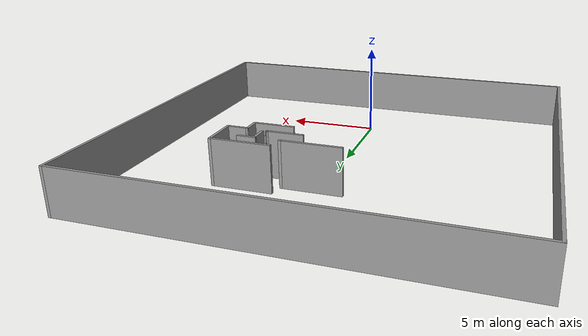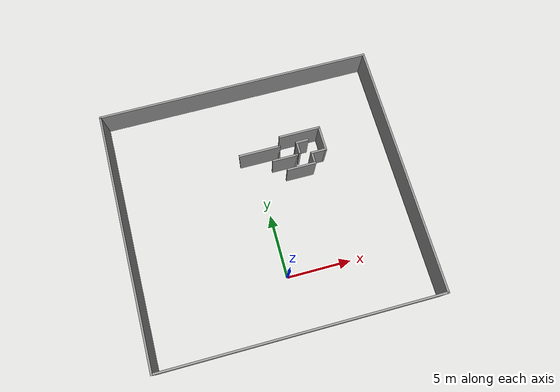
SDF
<?xml version='1.0'?>
<sdf version='1.7'>
  <model name='test_maze1'>
    <pose>-0.164851 5.57688 0 0 -0 0</pose>
    <link name='Wall_0'>
      <collision name='Wall_0_Collision'>
        <geometry>
          <box>
            <size>19.75 0.15 2.5</size>
          </box>
        </geometry>
        <pose>0 0 1.25 0 -0 0</pose>
      </collision>
      <visual name='Wall_0_Visual'>
        <pose>0 0 1.25 0 -0 0</pose>
        <geometry>
          <box>
            <size>19.75 0.15 2.5</size>
          </box>
        </geometry>
        <material>
          <script>
            <uri>file://media/materials/scripts/gazebo.material</uri>
            <name>Gazebo/Grey</name>
          </script>
          <ambient>1 1 1 1</ambient>
        </material>
        <meta>
          <layer>0</layer>
        </meta>
      </visual>
      <pose>-10.675 -0 0 0 -0 -1.5708</pose>
    </link>
    <link name='Wall_1'>
      <collision name='Wall_1_Collision'>
        <geometry>
          <box>
            <size>21.5 0.15 2.5</size>
          </box>
        </geometry>
        <pose>0 0 1.25 0 -0 0</pose>
      </collision>
      <visual name='Wall_1_Visual'>
        <pose>0 0 1.25 0 -0 0</pose>
        <geometry>
          <box>
            <size>21.5 0.15 2.5</size>
          </box>
        </geometry>
        <material>
          <script>
            <uri>file://media/materials/scripts/gazebo.material</uri>
            <name>Gazebo/Grey</name>
          </script>
          <ambient>1 1 1 1</ambient>
        </material>
        <meta>
          <layer>0</layer>
        </meta>
      </visual>
      <pose>0 -9.8 0 0 -0 0</pose>
    </link>
    <link name='Wall_10'>
      <collision name='Wall_10_Collision'>
        <geometry>
          <box>
            <size>0.16 0.15 2.5</size>
          </box>
        </geometry>
        <pose>0 0 1.25 0 -0 0</pose>
      </collision>
      <visual name='Wall_10_Visual'>
        <pose>0 0 1.25 0 -0 0</pose>
        <geometry>
          <box>
            <size>0.16 0.15 2.5</size>
          </box>
        </geometry>
        <material>
          <script>
            <uri>file://media/materials/scripts/gazebo.material</uri>
            <name>Gazebo/Grey</name>
          </script>
          <ambient>1 1 1 1</ambient>
        </material>
        <meta>
          <layer>0</layer>
        </meta>
      </visual>
      <pose>3.19531 2.92255 0 0 -0 0</pose>
    </link>
    <link name='Wall_12'>
      <collision name='Wall_12_Collision'>
        <geometry>
          <box>
            <size>2.25 0.15 2.5</size>
          </box>
        </geometry>
        <pose>0 0 1.25 0 -0 0</pose>
      </collision>
      <visual name='Wall_12_Visual'>
        <pose>0 0 1.25 0 -0 0</pose>
        <geometry>
          <box>
            <size>2.25 0.15 2.5</size>
          </box>
        </geometry>
        <material>
          <script>
            <uri>file://media/materials/scripts/gazebo.material</uri>
            <name>Gazebo/Grey</name>
          </script>
          <ambient>1 1 1 1</ambient>
        </material>
        <meta>
          <layer>0</layer>
        </meta>
      </visual>
      <pose>3.28033 1.95162 0 0 -0 0</pose>
    </link>
    <link name='Wall_13'>
      <collision name='Wall_13_Collision'>
        <geometry>
          <box>
            <size>1 0.15 2.5</size>
          </box>
        </geometry>
        <pose>0 0 1.25 0 -0 0</pose>
      </collision>
      <visual name='Wall_13_Visual'>
        <pose>0 0 1.25 0 -0 0</pose>
        <geometry>
          <box>
            <size>1 0.15 2.5</size>
          </box>
        </geometry>
        <material>
          <script>
            <uri>file://media/materials/scripts/gazebo.material</uri>
            <name>Gazebo/Grey</name>
          </script>
          <ambient>1 1 1 1</ambient>
        </material>
        <meta>
          <layer>0</layer>
        </meta>
      </visual>
      <pose>4.33033 2.37662 0 0 -0 1.5708</pose>
    </link>
    <link name='Wall_14'>
      <collision name='Wall_14_Collision'>
        <geometry>
          <box>
            <size>1.25 0.15 2.5</size>
          </box>
        </geometry>
        <pose>0 0 1.25 0 -0 0</pose>
      </collision>
      <visual name='Wall_14_Visual'>
        <pose>0 0 1.25 0 -0 0</pose>
        <geometry>
          <box>
            <size>1.25 0.15 2.5</size>
          </box>
        </geometry>
        <material>
          <script>
            <uri>file://media/materials/scripts/gazebo.material</uri>
            <name>Gazebo/Grey</name>
          </script>
          <ambient>1 1 1 1</ambient>
        </material>
        <meta>
          <layer>0</layer>
        </meta>
      </visual>
      <pose>4.88033 2.80162 0 0 -0 0</pose>
    </link>
    <link name='Wall_15'>
      <collision name='Wall_15_Collision'>
        <geometry>
          <box>
            <size>2 0.15 2.5</size>
          </box>
        </geometry>
        <pose>0 0 1.25 0 -0 0</pose>
      </collision>
      <visual name='Wall_15_Visual'>
        <pose>0 0 1.25 0 -0 0</pose>
        <geometry>
          <box>
            <size>2 0.15 2.5</size>
          </box>
        </geometry>
        <material>
          <script>
            <uri>file://media/materials/scripts/gazebo.material</uri>
            <name>Gazebo/Grey</name>
          </script>
          <ambient>1 1 1 1</ambient>
        </material>
        <meta>
          <layer>0</layer>
        </meta>
      </visual>
      <pose>5.43033 3.72662 0 0 -0 1.5708</pose>
    </link>
    <link name='Wall_16'>
      <collision name='Wall_16_Collision'>
        <geometry>
          <box>
            <size>3.25 0.15 2.5</size>
          </box>
        </geometry>
        <pose>0 0 1.25 0 -0 0</pose>
      </collision>
      <visual name='Wall_16_Visual'>
        <pose>0 0 1.25 0 -0 0</pose>
        <geometry>
          <box>
            <size>3.25 0.15 2.5</size>
          </box>
        </geometry>
        <material>
          <script>
            <uri>file://media/materials/scripts/gazebo.material</uri>
            <name>Gazebo/Grey</name>
          </script>
          <ambient>1 1 1 1</ambient>
        </material>
        <meta>
          <layer>0</layer>
        </meta>
      </visual>
      <pose>3.88033 4.65162 0 0 -0 3.14159</pose>
    </link>
    <link name='Wall_18'>
      <collision name='Wall_18_Collision'>
        <geometry>
          <box>
            <size>1 0.15 2.5</size>
          </box>
        </geometry>
        <pose>0 0 1.25 0 -0 0</pose>
      </collision>
      <visual name='Wall_18_Visual'>
        <pose>0 0 1.25 0 -0 0</pose>
        <geometry>
          <box>
            <size>1 0.15 2.5</size>
          </box>
        </geometry>
        <material>
          <script>
            <uri>file://media/materials/scripts/gazebo.material</uri>
            <name>Gazebo/Grey</name>
          </script>
          <ambient>1 1 1 1</ambient>
        </material>
        <meta>
          <layer>0</layer>
        </meta>
      </visual>
      <pose>3.444 3.46848 0 0 -0 -1.5708</pose>
    </link>
    <link name='Wall_2'>
      <collision name='Wall_2_Collision'>
        <geometry>
          <box>
            <size>19.75 0.15 2.5</size>
          </box>
        </geometry>
        <pose>0 0 1.25 0 -0 0</pose>
      </collision>
      <visual name='Wall_2_Visual'>
        <pose>0 0 1.25 0 -0 0</pose>
        <geometry>
          <box>
            <size>19.75 0.15 2.5</size>
          </box>
        </geometry>
        <material>
          <script>
            <uri>file://media/materials/scripts/gazebo.material</uri>
            <name>Gazebo/Grey</name>
          </script>
          <ambient>1 1 1 1</ambient>
        </material>
        <meta>
          <layer>0</layer>
        </meta>
      </visual>
      <pose>10.675 -0 0 0 -0 1.5708</pose>
    </link>
    <link name='Wall_20'>
      <collision name='Wall_20_Collision'>
        <geometry>
          <box>
            <size>1 0.15 2.5</size>
          </box>
        </geometry>
        <pose>0 0 1.25 0 -0 0</pose>
      </collision>
      <visual name='Wall_20_Visual'>
        <pose>0 0 1.25 0 -0 0</pose>
        <geometry>
          <box>
            <size>1 0.15 2.5</size>
          </box>
        </geometry>
        <material>
          <script>
            <uri>file://media/materials/scripts/gazebo.material</uri>
            <name>Gazebo/Grey</name>
          </script>
          <ambient>1 1 1 1</ambient>
        </material>
        <meta>
          <layer>0</layer>
        </meta>
      </visual>
      <pose>3.869 3.89349 0 0 -0 0</pose>
    </link>
    <link name='Wall_3'>
      <collision name='Wall_3_Collision'>
        <geometry>
          <box>
            <size>21.5 0.15 2.5</size>
          </box>
        </geometry>
        <pose>0 0 1.25 0 -0 0</pose>
      </collision>
      <visual name='Wall_3_Visual'>
        <pose>0 0 1.25 0 -0 0</pose>
        <geometry>
          <box>
            <size>21.5 0.15 2.5</size>
          </box>
        </geometry>
        <material>
          <script>
            <uri>file://media/materials/scripts/gazebo.material</uri>
            <name>Gazebo/Grey</name>
          </script>
          <ambient>1 1 1 1</ambient>
        </material>
        <meta>
          <layer>0</layer>
        </meta>
      </visual>
      <pose>0 9.8 0 0 -0 3.14159</pose>
    </link>
    <link name='Wall_4'>
      <collision name='Wall_4_Collision'>
        <geometry>
          <box>
            <size>0.15 0.15 2.5</size>
          </box>
        </geometry>
        <pose>0 0 1.25 0 -0 0</pose>
      </collision>
      <visual name='Wall_4_Visual'>
        <pose>0 0 1.25 0 -0 0</pose>
        <geometry>
          <box>
            <size>0.15 0.15 2.5</size>
          </box>
        </geometry>
        <material>
          <script>
            <uri>file://media/materials/scripts/gazebo.material</uri>
            <name>Gazebo/Grey</name>
          </script>
          <ambient>1 1 1 1</ambient>
        </material>
        <meta>
          <layer>0</layer>
        </meta>
      </visual>
      <pose>-10.675 9.8 0 0 -0 0</pose>
    </link>
    <link name='Wall_6'>
      <collision name='Wall_6_Collision'>
        <geometry>
          <box>
            <size>3.25 0.15 2.5</size>
          </box>
        </geometry>
        <pose>0 0 1.25 0 -0 0</pose>
      </collision>
      <visual name='Wall_6_Visual'>
        <pose>0 0 1.25 0 -0 0</pose>
        <geometry>
          <box>
            <size>3.25 0.15 2.5</size>
          </box>
        </geometry>
        <material>
          <script>
            <uri>file://media/materials/scripts/gazebo.material</uri>
            <name>Gazebo/Grey</name>
          </script>
          <ambient>1 1 1 1</ambient>
        </material>
        <meta>
          <layer>0</layer>
        </meta>
      </visual>
      <pose>0.543883 3.93394 0 0 -0 0</pose>
    </link>
    <link name='Wall_7'>
      <collision name='Wall_7_Collision'>
        <geometry>
          <box>
            <size>0.15 0.15 2.5</size>
          </box>
        </geometry>
        <pose>0 0 1.25 0 -0 0</pose>
      </collision>
      <visual name='Wall_7_Visual'>
        <pose>0 0 1.25 0 -0 0</pose>
        <geometry>
          <box>
            <size>0.15 0.15 2.5</size>
          </box>
        </geometry>
        <material>
          <script>
            <uri>file://media/materials/scripts/gazebo.material</uri>
            <name>Gazebo/Grey</name>
          </script>
          <ambient>1 1 1 1</ambient>
        </material>
        <meta>
          <layer>0</layer>
        </meta>
      </visual>
      <pose>2.09388 3.93394 0 0 -0 0</pose>
    </link>
    <link name='Wall_9'>
      <collision name='Wall_9_Collision'>
        <geometry>
          <box>
            <size>2 0.15 2.5</size>
          </box>
        </geometry>
        <pose>0 0 1.25 0 -0 0</pose>
      </collision>
      <visual name='Wall_9_Visual'>
        <pose>0 0 1.25 0 -0 0</pose>
        <geometry>
          <box>
            <size>2 0.15 2.5</size>
          </box>
        </geometry>
        <material>
          <script>
            <uri>file://media/materials/scripts/gazebo.material</uri>
            <name>Gazebo/Grey</name>
          </script>
          <ambient>1 1 1 1</ambient>
        </material>
        <meta>
          <layer>0</layer>
        </meta>
      </visual>
      <pose>2.26531 2.92255 0 0 -0 0</pose>
    </link>
    <static>1</static>
  </model>
</sdf>
